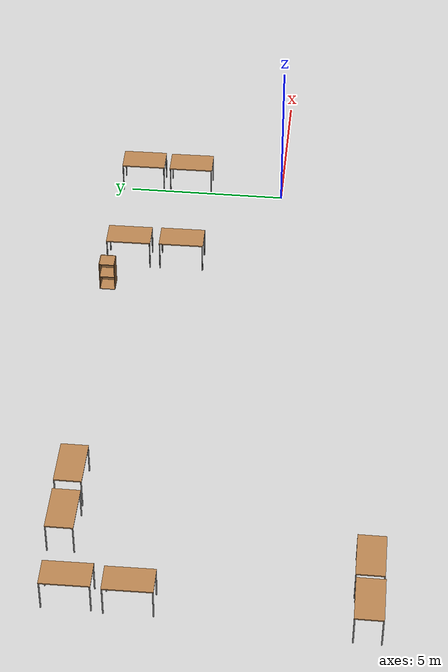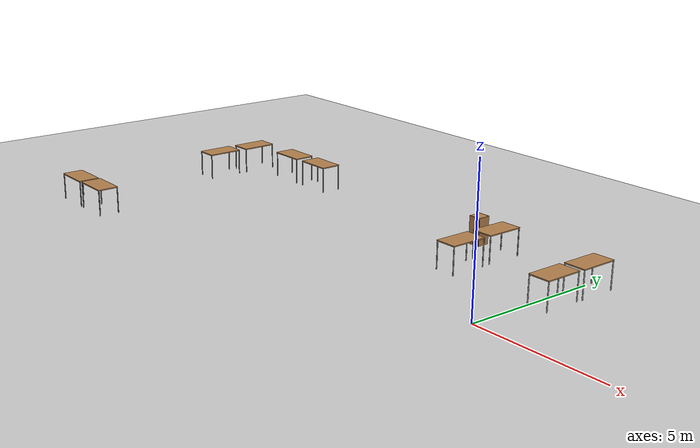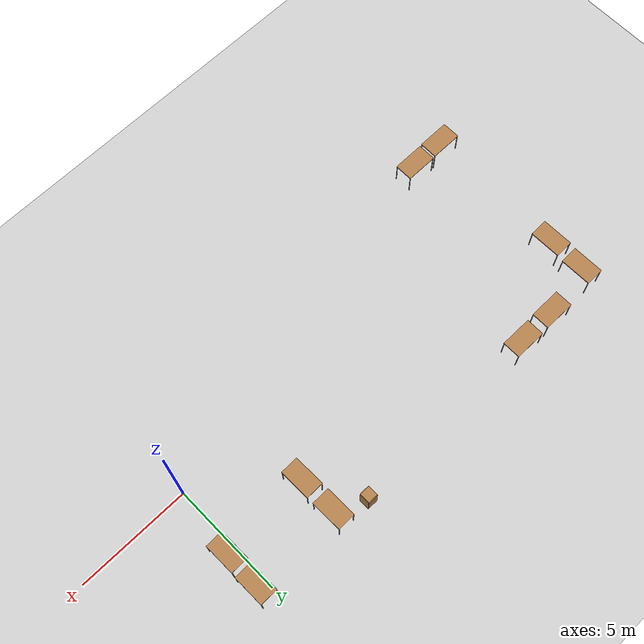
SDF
<sdf version="1.6">
 <world name="default">
  <model name="ground_plane">
   <static>1</static>
   <link name="link">
    <collision name="collision">
     <geometry><plane><normal>0 0 1</normal><size>100 100</size></plane></geometry>
     <surface><friction><ode><mu>100</mu><mu2>50</mu2></ode></friction></surface>
    </collision>
    <visual name="visual">
     <cast_shadows>0</cast_shadows>
     <geometry><plane><normal>0 0 1</normal><size>100 100</size></plane></geometry>
     <material>
      <script><uri>file://media/materials/scripts/gazebo.material</uri><name>Gazebo/Grey</name></script>
     </material>
    </visual>
   </link>
  </model>
  <model name="table_clone_4_clone_2">
   <static>0</static>
   <link name="link">
    <collision name="surface">
     <pose>0 0 1 0 -0 0</pose>
     <geometry><box><size>1.5 0.8 0.03</size></box></geometry>
     <surface><friction><ode><mu>0.6</mu><mu2>0.6</mu2></ode></friction></surface>
    </collision>
    <visual name="visual1">
     <pose>0 0 1 0 -0 0</pose>
     <geometry><box><size>1.4 0.8 0.04</size></box></geometry>
     <material>
      <script><uri>file://media/materials/scripts/gazebo.material</uri><name>Gazebo/Wood</name></script>
     </material>
    </visual>
    <collision name="front_left_leg">
     <pose>0.68 0.38 0.5 0 -0 0</pose>
     <geometry><cylinder><radius>0.02</radius><length>1</length></cylinder></geometry>
    </collision>
    <visual name="front_left_leg">
     <pose>0.68 0.38 0.5 0 -0 0</pose>
     <geometry><cylinder><radius>0.02</radius><length>1</length></cylinder></geometry>
     <material>
      <script><uri>file://media/materials/scripts/gazebo.material</uri><name>Gazebo/Grey</name></script>
     </material>
    </visual>
    <collision name="front_right_leg">
     <pose>0.68 -0.38 0.5 0 -0 0</pose>
     <geometry><cylinder><radius>0.02</radius><length>1</length></cylinder></geometry>
    </collision>
    <visual name="front_right_leg">
     <pose>0.68 -0.38 0.5 0 -0 0</pose>
     <geometry><cylinder><radius>0.02</radius><length>1</length></cylinder></geometry>
     <material>
      <script><uri>file://media/materials/scripts/gazebo.material</uri><name>Gazebo/Grey</name></script>
     </material>
    </visual>
    <collision name="back_right_leg">
     <pose>-0.68 -0.38 0.5 0 -0 0</pose>
     <geometry><cylinder><radius>0.02</radius><length>1</length></cylinder></geometry>
    </collision>
    <visual name="back_right_leg">
     <pose>-0.68 -0.38 0.5 0 -0 0</pose>
     <geometry><cylinder><radius>0.02</radius><length>1</length></cylinder></geometry>
     <material>
      <script><uri>file://media/materials/scripts/gazebo.material</uri><name>Gazebo/Grey</name></script>
     </material>
    </visual>
    <collision name="back_left_leg">
     <pose>-0.68 0.38 0.5 0 -0 0</pose>
     <geometry><cylinder><radius>0.02</radius><length>1</length></cylinder></geometry>
    </collision>
    <visual name="back_left_leg">
     <pose>-0.68 0.38 0.5 0 -0 0</pose>
     <geometry><cylinder><radius>0.02</radius><length>1</length></cylinder></geometry>
     <material>
      <script><uri>file://media/materials/scripts/gazebo.material</uri><name>Gazebo/Grey</name></script>
     </material>
    </visual>
    <inertial>
     <inertia><ixx>1</ixx><ixy>0</ixy><ixz>0</ixz><iyy>1</iyy><iyz>0</iyz><izz>1</izz></inertia>
     <mass>1</mass>
    </inertial>
   </link>
   <pose>-3.55731 4.62139 -2e-06 0 1e-06 -1.55897</pose>
  </model>
  <model name="table_clone_4_clone_3">
   <static>0</static>
   <link name="link">
    <collision name="surface">
     <pose>0 0 1 0 -0 0</pose>
     <geometry><box><size>1.5 0.8 0.03</size></box></geometry>
     <surface><friction><ode><mu>0.6</mu><mu2>0.6</mu2></ode></friction></surface>
    </collision>
    <visual name="visual1">
     <pose>0 0 1 0 -0 0</pose>
     <geometry><box><size>1.4 0.8 0.04</size></box></geometry>
     <material>
      <script><uri>file://media/materials/scripts/gazebo.material</uri><name>Gazebo/Wood</name></script>
     </material>
    </visual>
    <collision name="front_left_leg">
     <pose>0.68 0.38 0.5 0 -0 0</pose>
     <geometry><cylinder><radius>0.02</radius><length>1</length></cylinder></geometry>
    </collision>
    <visual name="front_left_leg">
     <pose>0.68 0.38 0.5 0 -0 0</pose>
     <geometry><cylinder><radius>0.02</radius><length>1</length></cylinder></geometry>
     <material>
      <script><uri>file://media/materials/scripts/gazebo.material</uri><name>Gazebo/Grey</name></script>
     </material>
    </visual>
    <collision name="front_right_leg">
     <pose>0.68 -0.38 0.5 0 -0 0</pose>
     <geometry><cylinder><radius>0.02</radius><length>1</length></cylinder></geometry>
    </collision>
    <visual name="front_right_leg">
     <pose>0.68 -0.38 0.5 0 -0 0</pose>
     <geometry><cylinder><radius>0.02</radius><length>1</length></cylinder></geometry>
     <material>
      <script><uri>file://media/materials/scripts/gazebo.material</uri><name>Gazebo/Grey</name></script>
     </material>
    </visual>
    <collision name="back_right_leg">
     <pose>-0.68 -0.38 0.5 0 -0 0</pose>
     <geometry><cylinder><radius>0.02</radius><length>1</length></cylinder></geometry>
    </collision>
    <visual name="back_right_leg">
     <pose>-0.68 -0.38 0.5 0 -0 0</pose>
     <geometry><cylinder><radius>0.02</radius><length>1</length></cylinder></geometry>
     <material>
      <script><uri>file://media/materials/scripts/gazebo.material</uri><name>Gazebo/Grey</name></script>
     </material>
    </visual>
    <collision name="back_left_leg">
     <pose>-0.68 0.38 0.5 0 -0 0</pose>
     <geometry><cylinder><radius>0.02</radius><length>1</length></cylinder></geometry>
    </collision>
    <visual name="back_left_leg">
     <pose>-0.68 0.38 0.5 0 -0 0</pose>
     <geometry><cylinder><radius>0.02</radius><length>1</length></cylinder></geometry>
     <material>
      <script><uri>file://media/materials/scripts/gazebo.material</uri><name>Gazebo/Grey</name></script>
     </material>
    </visual>
    <inertial>
     <inertia><ixx>1</ixx><ixy>0</ixy><ixz>0</ixz><iyy>1</iyy><iyz>0</iyz><izz>1</izz></inertia>
     <mass>1</mass>
    </inertial>
   </link>
   <pose>-3.53052 2.94136 -1e-06 0 1e-06 -1.55897</pose>
  </model>
  <model name="table_clone_4_clone_4">
   <static>0</static>
   <link name="link">
    <collision name="surface">
     <pose>0 0 1 0 -0 0</pose>
     <geometry><box><size>1.5 0.8 0.03</size></box></geometry>
     <surface><friction><ode><mu>0.6</mu><mu2>0.6</mu2></ode></friction></surface>
    </collision>
    <visual name="visual1">
     <pose>0 0 1 0 -0 0</pose>
     <geometry><box><size>1.4 0.8 0.04</size></box></geometry>
     <material>
      <script><uri>file://media/materials/scripts/gazebo.material</uri><name>Gazebo/Wood</name></script>
     </material>
    </visual>
    <collision name="front_left_leg">
     <pose>0.68 0.38 0.5 0 -0 0</pose>
     <geometry><cylinder><radius>0.02</radius><length>1</length></cylinder></geometry>
    </collision>
    <visual name="front_left_leg">
     <pose>0.68 0.38 0.5 0 -0 0</pose>
     <geometry><cylinder><radius>0.02</radius><length>1</length></cylinder></geometry>
     <material>
      <script><uri>file://media/materials/scripts/gazebo.material</uri><name>Gazebo/Grey</name></script>
     </material>
    </visual>
    <collision name="front_right_leg">
     <pose>0.68 -0.38 0.5 0 -0 0</pose>
     <geometry><cylinder><radius>0.02</radius><length>1</length></cylinder></geometry>
    </collision>
    <visual name="front_right_leg">
     <pose>0.68 -0.38 0.5 0 -0 0</pose>
     <geometry><cylinder><radius>0.02</radius><length>1</length></cylinder></geometry>
     <material>
      <script><uri>file://media/materials/scripts/gazebo.material</uri><name>Gazebo/Grey</name></script>
     </material>
    </visual>
    <collision name="back_right_leg">
     <pose>-0.68 -0.38 0.5 0 -0 0</pose>
     <geometry><cylinder><radius>0.02</radius><length>1</length></cylinder></geometry>
    </collision>
    <visual name="back_right_leg">
     <pose>-0.68 -0.38 0.5 0 -0 0</pose>
     <geometry><cylinder><radius>0.02</radius><length>1</length></cylinder></geometry>
     <material>
      <script><uri>file://media/materials/scripts/gazebo.material</uri><name>Gazebo/Grey</name></script>
     </material>
    </visual>
    <collision name="back_left_leg">
     <pose>-0.68 0.38 0.5 0 -0 0</pose>
     <geometry><cylinder><radius>0.02</radius><length>1</length></cylinder></geometry>
    </collision>
    <visual name="back_left_leg">
     <pose>-0.68 0.38 0.5 0 -0 0</pose>
     <geometry><cylinder><radius>0.02</radius><length>1</length></cylinder></geometry>
     <material>
      <script><uri>file://media/materials/scripts/gazebo.material</uri><name>Gazebo/Grey</name></script>
     </material>
    </visual>
    <inertial>
     <inertia><ixx>1</ixx><ixy>0</ixy><ixz>0</ixz><iyy>1</iyy><iyz>0</iyz><izz>1</izz></inertia>
     <mass>1</mass>
    </inertial>
   </link>
   <pose>0.376423 4.61875 -8e-06 0 -1e-06 -1.55897</pose>
  </model>
  <model name="table_clone_4_clone_5">
   <static>0</static>
   <link name="link">
    <collision name="surface">
     <pose>0 0 1 0 -0 0</pose>
     <geometry><box><size>1.5 0.8 0.03</size></box></geometry>
     <surface><friction><ode><mu>0.6</mu><mu2>0.6</mu2></ode></friction></surface>
    </collision>
    <visual name="visual1">
     <pose>0 0 1 0 -0 0</pose>
     <geometry><box><size>1.4 0.8 0.04</size></box></geometry>
     <material>
      <script><uri>file://media/materials/scripts/gazebo.material</uri><name>Gazebo/Wood</name></script>
     </material>
    </visual>
    <collision name="front_left_leg">
     <pose>0.68 0.38 0.5 0 -0 0</pose>
     <geometry><cylinder><radius>0.02</radius><length>1</length></cylinder></geometry>
    </collision>
    <visual name="front_left_leg">
     <pose>0.68 0.38 0.5 0 -0 0</pose>
     <geometry><cylinder><radius>0.02</radius><length>1</length></cylinder></geometry>
     <material>
      <script><uri>file://media/materials/scripts/gazebo.material</uri><name>Gazebo/Grey</name></script>
     </material>
    </visual>
    <collision name="front_right_leg">
     <pose>0.68 -0.38 0.5 0 -0 0</pose>
     <geometry><cylinder><radius>0.02</radius><length>1</length></cylinder></geometry>
    </collision>
    <visual name="front_right_leg">
     <pose>0.68 -0.38 0.5 0 -0 0</pose>
     <geometry><cylinder><radius>0.02</radius><length>1</length></cylinder></geometry>
     <material>
      <script><uri>file://media/materials/scripts/gazebo.material</uri><name>Gazebo/Grey</name></script>
     </material>
    </visual>
    <collision name="back_right_leg">
     <pose>-0.68 -0.38 0.5 0 -0 0</pose>
     <geometry><cylinder><radius>0.02</radius><length>1</length></cylinder></geometry>
    </collision>
    <visual name="back_right_leg">
     <pose>-0.68 -0.38 0.5 0 -0 0</pose>
     <geometry><cylinder><radius>0.02</radius><length>1</length></cylinder></geometry>
     <material>
      <script><uri>file://media/materials/scripts/gazebo.material</uri><name>Gazebo/Grey</name></script>
     </material>
    </visual>
    <collision name="back_left_leg">
     <pose>-0.68 0.38 0.5 0 -0 0</pose>
     <geometry><cylinder><radius>0.02</radius><length>1</length></cylinder></geometry>
    </collision>
    <visual name="back_left_leg">
     <pose>-0.68 0.38 0.5 0 -0 0</pose>
     <geometry><cylinder><radius>0.02</radius><length>1</length></cylinder></geometry>
     <material>
      <script><uri>file://media/materials/scripts/gazebo.material</uri><name>Gazebo/Grey</name></script>
     </material>
    </visual>
    <inertial>
     <inertia><ixx>1</ixx><ixy>0</ixy><ixz>0</ixz><iyy>1</iyy><iyz>0</iyz><izz>1</izz></inertia>
     <mass>1</mass>
    </inertial>
   </link>
   <pose>0.364459 3.03386 -1e-06 0 1e-06 -1.55897</pose>
  </model>
  <model name="table_clone_4_clone_6">
   <static>0</static>
   <link name="link">
    <collision name="surface">
     <pose>0 0 1 0 -0 0</pose>
     <geometry><box><size>1.5 0.8 0.03</size></box></geometry>
     <surface><friction><ode><mu>0.6</mu><mu2>0.6</mu2></ode></friction></surface>
    </collision>
    <visual name="visual1">
     <pose>0 0 1 0 -0 0</pose>
     <geometry><box><size>1.4 0.8 0.04</size></box></geometry>
     <material>
      <script><uri>file://media/materials/scripts/gazebo.material</uri><name>Gazebo/Wood</name></script>
     </material>
    </visual>
    <collision name="front_left_leg">
     <pose>0.68 0.38 0.5 0 -0 0</pose>
     <geometry><cylinder><radius>0.02</radius><length>1</length></cylinder></geometry>
    </collision>
    <visual name="front_left_leg">
     <pose>0.68 0.38 0.5 0 -0 0</pose>
     <geometry><cylinder><radius>0.02</radius><length>1</length></cylinder></geometry>
     <material>
      <script><uri>file://media/materials/scripts/gazebo.material</uri><name>Gazebo/Grey</name></script>
     </material>
    </visual>
    <collision name="front_right_leg">
     <pose>0.68 -0.38 0.5 0 -0 0</pose>
     <geometry><cylinder><radius>0.02</radius><length>1</length></cylinder></geometry>
    </collision>
    <visual name="front_right_leg">
     <pose>0.68 -0.38 0.5 0 -0 0</pose>
     <geometry><cylinder><radius>0.02</radius><length>1</length></cylinder></geometry>
     <material>
      <script><uri>file://media/materials/scripts/gazebo.material</uri><name>Gazebo/Grey</name></script>
     </material>
    </visual>
    <collision name="back_right_leg">
     <pose>-0.68 -0.38 0.5 0 -0 0</pose>
     <geometry><cylinder><radius>0.02</radius><length>1</length></cylinder></geometry>
    </collision>
    <visual name="back_right_leg">
     <pose>-0.68 -0.38 0.5 0 -0 0</pose>
     <geometry><cylinder><radius>0.02</radius><length>1</length></cylinder></geometry>
     <material>
      <script><uri>file://media/materials/scripts/gazebo.material</uri><name>Gazebo/Grey</name></script>
     </material>
    </visual>
    <collision name="back_left_leg">
     <pose>-0.68 0.38 0.5 0 -0 0</pose>
     <geometry><cylinder><radius>0.02</radius><length>1</length></cylinder></geometry>
    </collision>
    <visual name="back_left_leg">
     <pose>-0.68 0.38 0.5 0 -0 0</pose>
     <geometry><cylinder><radius>0.02</radius><length>1</length></cylinder></geometry>
     <material>
      <script><uri>file://media/materials/scripts/gazebo.material</uri><name>Gazebo/Grey</name></script>
     </material>
    </visual>
    <inertial>
     <inertia><ixx>1</ixx><ixy>0</ixy><ixz>0</ixz><iyy>1</iyy><iyz>0</iyz><izz>1</izz></inertia>
     <mass>1</mass>
    </inertial>
   </link>
   <pose>-17.6715 4.49427 -8e-06 0 -1e-06 -1.55897</pose>
  </model>
  <model name="table_clone_4_clone_7">
   <static>0</static>
   <link name="link">
    <collision name="surface">
     <pose>0 0 1 0 -0 0</pose>
     <geometry><box><size>1.5 0.8 0.03</size></box></geometry>
     <surface><friction><ode><mu>0.6</mu><mu2>0.6</mu2></ode></friction></surface>
    </collision>
    <visual name="visual1">
     <pose>0 0 1 0 -0 0</pose>
     <geometry><box><size>1.4 0.8 0.04</size></box></geometry>
     <material>
      <script><uri>file://media/materials/scripts/gazebo.material</uri><name>Gazebo/Wood</name></script>
     </material>
    </visual>
    <collision name="front_left_leg">
     <pose>0.68 0.38 0.5 0 -0 0</pose>
     <geometry><cylinder><radius>0.02</radius><length>1</length></cylinder></geometry>
    </collision>
    <visual name="front_left_leg">
     <pose>0.68 0.38 0.5 0 -0 0</pose>
     <geometry><cylinder><radius>0.02</radius><length>1</length></cylinder></geometry>
     <material>
      <script><uri>file://media/materials/scripts/gazebo.material</uri><name>Gazebo/Grey</name></script>
     </material>
    </visual>
    <collision name="front_right_leg">
     <pose>0.68 -0.38 0.5 0 -0 0</pose>
     <geometry><cylinder><radius>0.02</radius><length>1</length></cylinder></geometry>
    </collision>
    <visual name="front_right_leg">
     <pose>0.68 -0.38 0.5 0 -0 0</pose>
     <geometry><cylinder><radius>0.02</radius><length>1</length></cylinder></geometry>
     <material>
      <script><uri>file://media/materials/scripts/gazebo.material</uri><name>Gazebo/Grey</name></script>
     </material>
    </visual>
    <collision name="back_right_leg">
     <pose>-0.68 -0.38 0.5 0 -0 0</pose>
     <geometry><cylinder><radius>0.02</radius><length>1</length></cylinder></geometry>
    </collision>
    <visual name="back_right_leg">
     <pose>-0.68 -0.38 0.5 0 -0 0</pose>
     <geometry><cylinder><radius>0.02</radius><length>1</length></cylinder></geometry>
     <material>
      <script><uri>file://media/materials/scripts/gazebo.material</uri><name>Gazebo/Grey</name></script>
     </material>
    </visual>
    <collision name="back_left_leg">
     <pose>-0.68 0.38 0.5 0 -0 0</pose>
     <geometry><cylinder><radius>0.02</radius><length>1</length></cylinder></geometry>
    </collision>
    <visual name="back_left_leg">
     <pose>-0.68 0.38 0.5 0 -0 0</pose>
     <geometry><cylinder><radius>0.02</radius><length>1</length></cylinder></geometry>
     <material>
      <script><uri>file://media/materials/scripts/gazebo.material</uri><name>Gazebo/Grey</name></script>
     </material>
    </visual>
    <inertial>
     <inertia><ixx>1</ixx><ixy>0</ixy><ixz>0</ixz><iyy>1</iyy><iyz>0</iyz><izz>1</izz></inertia>
     <mass>1</mass>
    </inertial>
   </link>
   <pose>-17.708 2.80943 -1e-06 0 1e-06 -1.55897</pose>
  </model>
  <model name="table_clone_3_clone">
   <static>0</static>
   <link name="link">
    <collision name="surface">
     <pose>0 0 1 0 -0 0</pose>
     <geometry><box><size>1.5 0.8 0.03</size></box></geometry>
     <surface><friction><ode><mu>0.6</mu><mu2>0.6</mu2></ode></friction></surface>
    </collision>
    <visual name="visual1">
     <pose>0 0 1 0 -0 0</pose>
     <geometry><box><size>1.4 0.8 0.04</size></box></geometry>
     <material>
      <script><uri>file://media/materials/scripts/gazebo.material</uri><name>Gazebo/Wood</name></script>
     </material>
    </visual>
    <collision name="front_left_leg">
     <pose>0.68 0.38 0.5 0 -0 0</pose>
     <geometry><cylinder><radius>0.02</radius><length>1</length></cylinder></geometry>
    </collision>
    <visual name="front_left_leg">
     <pose>0.68 0.38 0.5 0 -0 0</pose>
     <geometry><cylinder><radius>0.02</radius><length>1</length></cylinder></geometry>
     <material>
      <script><uri>file://media/materials/scripts/gazebo.material</uri><name>Gazebo/Grey</name></script>
     </material>
    </visual>
    <collision name="front_right_leg">
     <pose>0.68 -0.38 0.5 0 -0 0</pose>
     <geometry><cylinder><radius>0.02</radius><length>1</length></cylinder></geometry>
    </collision>
    <visual name="front_right_leg">
     <pose>0.68 -0.38 0.5 0 -0 0</pose>
     <geometry><cylinder><radius>0.02</radius><length>1</length></cylinder></geometry>
     <material>
      <script><uri>file://media/materials/scripts/gazebo.material</uri><name>Gazebo/Grey</name></script>
     </material>
    </visual>
    <collision name="back_right_leg">
     <pose>-0.68 -0.38 0.5 0 -0 0</pose>
     <geometry><cylinder><radius>0.02</radius><length>1</length></cylinder></geometry>
    </collision>
    <visual name="back_right_leg">
     <pose>-0.68 -0.38 0.5 0 -0 0</pose>
     <geometry><cylinder><radius>0.02</radius><length>1</length></cylinder></geometry>
     <material>
      <script><uri>file://media/materials/scripts/gazebo.material</uri><name>Gazebo/Grey</name></script>
     </material>
    </visual>
    <collision name="back_left_leg">
     <pose>-0.68 0.38 0.5 0 -0 0</pose>
     <geometry><cylinder><radius>0.02</radius><length>1</length></cylinder></geometry>
    </collision>
    <visual name="back_left_leg">
     <pose>-0.68 0.38 0.5 0 -0 0</pose>
     <geometry><cylinder><radius>0.02</radius><length>1</length></cylinder></geometry>
     <material>
      <script><uri>file://media/materials/scripts/gazebo.material</uri><name>Gazebo/Grey</name></script>
     </material>
    </visual>
    <inertial>
     <inertia><ixx>1</ixx><ixy>0</ixy><ixz>0</ixz><iyy>1</iyy><iyz>0</iyz><izz>1</izz></inertia>
     <mass>1</mass>
    </inertial>
   </link>
   <pose>-15.3803 4.94145 -1e-06 0 -0 4e-06</pose>
  </model>
  <model name="table_clone_3_clone_0">
   <static>0</static>
   <link name="link">
    <collision name="surface">
     <pose>0 0 1 0 -0 0</pose>
     <geometry><box><size>1.5 0.8 0.03</size></box></geometry>
     <surface><friction><ode><mu>0.6</mu><mu2>0.6</mu2></ode></friction></surface>
    </collision>
    <visual name="visual1">
     <pose>0 0 1 0 -0 0</pose>
     <geometry><box><size>1.4 0.8 0.04</size></box></geometry>
     <material>
      <script><uri>file://media/materials/scripts/gazebo.material</uri><name>Gazebo/Wood</name></script>
     </material>
    </visual>
    <collision name="front_left_leg">
     <pose>0.68 0.38 0.5 0 -0 0</pose>
     <geometry><cylinder><radius>0.02</radius><length>1</length></cylinder></geometry>
    </collision>
    <visual name="front_left_leg">
     <pose>0.68 0.38 0.5 0 -0 0</pose>
     <geometry><cylinder><radius>0.02</radius><length>1</length></cylinder></geometry>
     <material>
      <script><uri>file://media/materials/scripts/gazebo.material</uri><name>Gazebo/Grey</name></script>
     </material>
    </visual>
    <collision name="front_right_leg">
     <pose>0.68 -0.38 0.5 0 -0 0</pose>
     <geometry><cylinder><radius>0.02</radius><length>1</length></cylinder></geometry>
    </collision>
    <visual name="front_right_leg">
     <pose>0.68 -0.38 0.5 0 -0 0</pose>
     <geometry><cylinder><radius>0.02</radius><length>1</length></cylinder></geometry>
     <material>
      <script><uri>file://media/materials/scripts/gazebo.material</uri><name>Gazebo/Grey</name></script>
     </material>
    </visual>
    <collision name="back_right_leg">
     <pose>-0.68 -0.38 0.5 0 -0 0</pose>
     <geometry><cylinder><radius>0.02</radius><length>1</length></cylinder></geometry>
    </collision>
    <visual name="back_right_leg">
     <pose>-0.68 -0.38 0.5 0 -0 0</pose>
     <geometry><cylinder><radius>0.02</radius><length>1</length></cylinder></geometry>
     <material>
      <script><uri>file://media/materials/scripts/gazebo.material</uri><name>Gazebo/Grey</name></script>
     </material>
    </visual>
    <collision name="back_left_leg">
     <pose>-0.68 0.38 0.5 0 -0 0</pose>
     <geometry><cylinder><radius>0.02</radius><length>1</length></cylinder></geometry>
    </collision>
    <visual name="back_left_leg">
     <pose>-0.68 0.38 0.5 0 -0 0</pose>
     <geometry><cylinder><radius>0.02</radius><length>1</length></cylinder></geometry>
     <material>
      <script><uri>file://media/materials/scripts/gazebo.material</uri><name>Gazebo/Grey</name></script>
     </material>
    </visual>
    <inertial>
     <inertia><ixx>1</ixx><ixy>0</ixy><ixz>0</ixz><iyy>1</iyy><iyz>0</iyz><izz>1</izz></inertia>
     <mass>1</mass>
    </inertial>
   </link>
   <pose>-13.6523 4.96734 -9e-06 0 -0 4e-06</pose>
  </model>
  <model name="table_clone_3_clone_1">
   <static>0</static>
   <link name="link">
    <collision name="surface">
     <pose>0 0 1 0 -0 0</pose>
     <geometry><box><size>1.5 0.8 0.03</size></box></geometry>
     <surface><friction><ode><mu>0.6</mu><mu2>0.6</mu2></ode></friction></surface>
    </collision>
    <visual name="visual1">
     <pose>0 0 1 0 -0 0</pose>
     <geometry><box><size>1.4 0.8 0.04</size></box></geometry>
     <material>
      <script><uri>file://media/materials/scripts/gazebo.material</uri><name>Gazebo/Wood</name></script>
     </material>
    </visual>
    <collision name="front_left_leg">
     <pose>0.68 0.38 0.5 0 -0 0</pose>
     <geometry><cylinder><radius>0.02</radius><length>1</length></cylinder></geometry>
    </collision>
    <visual name="front_left_leg">
     <pose>0.68 0.38 0.5 0 -0 0</pose>
     <geometry><cylinder><radius>0.02</radius><length>1</length></cylinder></geometry>
     <material>
      <script><uri>file://media/materials/scripts/gazebo.material</uri><name>Gazebo/Grey</name></script>
     </material>
    </visual>
    <collision name="front_right_leg">
     <pose>0.68 -0.38 0.5 0 -0 0</pose>
     <geometry><cylinder><radius>0.02</radius><length>1</length></cylinder></geometry>
    </collision>
    <visual name="front_right_leg">
     <pose>0.68 -0.38 0.5 0 -0 0</pose>
     <geometry><cylinder><radius>0.02</radius><length>1</length></cylinder></geometry>
     <material>
      <script><uri>file://media/materials/scripts/gazebo.material</uri><name>Gazebo/Grey</name></script>
     </material>
    </visual>
    <collision name="back_right_leg">
     <pose>-0.68 -0.38 0.5 0 -0 0</pose>
     <geometry><cylinder><radius>0.02</radius><length>1</length></cylinder></geometry>
    </collision>
    <visual name="back_right_leg">
     <pose>-0.68 -0.38 0.5 0 -0 0</pose>
     <geometry><cylinder><radius>0.02</radius><length>1</length></cylinder></geometry>
     <material>
      <script><uri>file://media/materials/scripts/gazebo.material</uri><name>Gazebo/Grey</name></script>
     </material>
    </visual>
    <collision name="back_left_leg">
     <pose>-0.68 0.38 0.5 0 -0 0</pose>
     <geometry><cylinder><radius>0.02</radius><length>1</length></cylinder></geometry>
    </collision>
    <visual name="back_left_leg">
     <pose>-0.68 0.38 0.5 0 -0 0</pose>
     <geometry><cylinder><radius>0.02</radius><length>1</length></cylinder></geometry>
     <material>
      <script><uri>file://media/materials/scripts/gazebo.material</uri><name>Gazebo/Grey</name></script>
     </material>
    </visual>
    <inertial>
     <inertia><ixx>1</ixx><ixy>0</ixy><ixz>0</ixz><iyy>1</iyy><iyz>0</iyz><izz>1</izz></inertia>
     <mass>1</mass>
    </inertial>
   </link>
   <pose>-17.7676 -3.57146 0 0 1e-06 4e-06</pose>
  </model>
  <model name="table_clone_3_clone_2">
   <static>0</static>
   <link name="link">
    <collision name="surface">
     <pose>0 0 1 0 -0 0</pose>
     <geometry><box><size>1.5 0.8 0.03</size></box></geometry>
     <surface><friction><ode><mu>0.6</mu><mu2>0.6</mu2></ode></friction></surface>
    </collision>
    <visual name="visual1">
     <pose>0 0 1 0 -0 0</pose>
     <geometry><box><size>1.4 0.8 0.04</size></box></geometry>
     <material>
      <script><uri>file://media/materials/scripts/gazebo.material</uri><name>Gazebo/Wood</name></script>
     </material>
    </visual>
    <collision name="front_left_leg">
     <pose>0.68 0.38 0.5 0 -0 0</pose>
     <geometry><cylinder><radius>0.02</radius><length>1</length></cylinder></geometry>
    </collision>
    <visual name="front_left_leg">
     <pose>0.68 0.38 0.5 0 -0 0</pose>
     <geometry><cylinder><radius>0.02</radius><length>1</length></cylinder></geometry>
     <material>
      <script><uri>file://media/materials/scripts/gazebo.material</uri><name>Gazebo/Grey</name></script>
     </material>
    </visual>
    <collision name="front_right_leg">
     <pose>0.68 -0.38 0.5 0 -0 0</pose>
     <geometry><cylinder><radius>0.02</radius><length>1</length></cylinder></geometry>
    </collision>
    <visual name="front_right_leg">
     <pose>0.68 -0.38 0.5 0 -0 0</pose>
     <geometry><cylinder><radius>0.02</radius><length>1</length></cylinder></geometry>
     <material>
      <script><uri>file://media/materials/scripts/gazebo.material</uri><name>Gazebo/Grey</name></script>
     </material>
    </visual>
    <collision name="back_right_leg">
     <pose>-0.68 -0.38 0.5 0 -0 0</pose>
     <geometry><cylinder><radius>0.02</radius><length>1</length></cylinder></geometry>
    </collision>
    <visual name="back_right_leg">
     <pose>-0.68 -0.38 0.5 0 -0 0</pose>
     <geometry><cylinder><radius>0.02</radius><length>1</length></cylinder></geometry>
     <material>
      <script><uri>file://media/materials/scripts/gazebo.material</uri><name>Gazebo/Grey</name></script>
     </material>
    </visual>
    <collision name="back_left_leg">
     <pose>-0.68 0.38 0.5 0 -0 0</pose>
     <geometry><cylinder><radius>0.02</radius><length>1</length></cylinder></geometry>
    </collision>
    <visual name="back_left_leg">
     <pose>-0.68 0.38 0.5 0 -0 0</pose>
     <geometry><cylinder><radius>0.02</radius><length>1</length></cylinder></geometry>
     <material>
      <script><uri>file://media/materials/scripts/gazebo.material</uri><name>Gazebo/Grey</name></script>
     </material>
    </visual>
    <inertial>
     <inertia><ixx>1</ixx><ixy>0</ixy><ixz>0</ixz><iyy>1</iyy><iyz>0</iyz><izz>1</izz></inertia>
     <mass>1</mass>
    </inertial>
   </link>
   <pose>-16.2614 -3.54844 -9e-06 2e-06 0 4e-06</pose>
  </model>
  <model name="cabinet">
   <static>1</static>
   <link name="cabinet_bottom_plate">
    <inertial>
     <pose>0 0 -1 0 -0 0</pose>
     <inertia><ixx>2.05</ixx><ixy>0</ixy><ixz>0</ixz><iyy>2.05</iyy><iyz>0</iyz><izz>2.05</izz></inertia>
     <mass>25</mass>
    </inertial>
    <collision name="cabinet_bottom_plate_geom">
     <pose>0 0 0.01 0 -0 0</pose>
     <geometry><box><size>0.45 0.45 0.02</size></box></geometry>
    </collision>
    <visual name="cabinet_bottom_plate_geom_visual">
     <pose>0 0 0.01 0 -0 0</pose>
     <geometry><box><size>0.45 0.45 0.02</size></box></geometry>
     <material>
      <script><uri>file://media/materials/scripts/gazebo.material</uri><name>Gazebo/Wood</name></script>
     </material>
    </visual>
    <collision name="cabinet_bottom_plate_geom_cabinet_back_plate">
     <pose>0.235 0 0.51 0 -0 0</pose>
     <geometry><box><size>0.02 0.45 1.02</size></box></geometry>
    </collision>
    <visual name="cabinet_bottom_plate_geom_cabinet_back_plate_visual">
     <pose>0.235 0 0.51 0 -0 0</pose>
     <geometry><box><size>0.02 0.45 1.02</size></box></geometry>
     <material>
      <script><uri>file://media/materials/scripts/gazebo.material</uri><name>Gazebo/Wood</name></script>
     </material>
    </visual>
    <collision name="cabinet_bottom_plate_geom_cabinet_left_plate">
     <pose>0 0.235 0.51 0 -0 0</pose>
     <geometry><box><size>0.45 0.02 1.02</size></box></geometry>
    </collision>
    <visual name="cabinet_bottom_plate_geom_cabinet_left_plate_visual">
     <pose>0 0.235 0.51 0 -0 0</pose>
     <geometry><box><size>0.45 0.02 1.02</size></box></geometry>
     <material>
      <script><uri>file://media/materials/scripts/gazebo.material</uri><name>Gazebo/Wood</name></script>
     </material>
    </visual>
    <collision name="cabinet_bottom_plate_geom_cabinet_middle_plate">
     <pose>0 0 0.51 0 -0 0</pose>
     <geometry><box><size>0.45 0.45 0.02</size></box></geometry>
    </collision>
    <visual name="cabinet_bottom_plate_geom_cabinet_middle_plate_visual">
     <pose>0 0 0.51 0 -0 0</pose>
     <geometry><box><size>0.45 0.45 0.02</size></box></geometry>
     <material>
      <script><uri>file://media/materials/scripts/gazebo.material</uri><name>Gazebo/Wood</name></script>
     </material>
    </visual>
    <collision name="cabinet_bottom_plate_geom_cabinet_right_plate">
     <pose>0 -0.235 0.51 0 -0 0</pose>
     <geometry><box><size>0.45 0.02 1.02</size></box></geometry>
    </collision>
    <visual name="cabinet_bottom_plate_geom_cabinet_right_plate_visual">
     <pose>0 -0.235 0.51 0 -0 0</pose>
     <geometry><box><size>0.45 0.02 1.02</size></box></geometry>
     <material>
      <script><uri>file://media/materials/scripts/gazebo.material</uri><name>Gazebo/Wood</name></script>
     </material>
    </visual>
    <collision name="cabinet_bottom_plate_geom_cabinet_top_plate">
     <pose>0 0 1.01 0 -0 0</pose>
     <geometry><box><size>0.45 0.45 0.02</size></box></geometry>
    </collision>
    <visual name="cabinet_bottom_plate_geom_cabinet_top_plate_visual">
     <pose>0 0 1.01 0 -0 0</pose>
     <geometry><box><size>0.45 0.45 0.02</size></box></geometry>
     <material>
      <script><uri>file://media/materials/scripts/gazebo.material</uri><name>Gazebo/Wood</name></script>
     </material>
    </visual>
   </link>
   <pose>-4.88926 5.15237 0 0 -0 0</pose>
  </model>
 </world>
</sdf>
